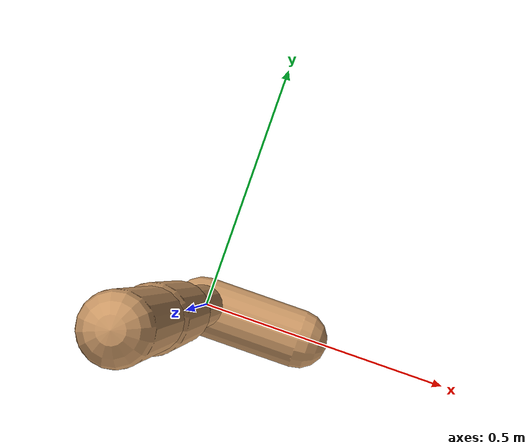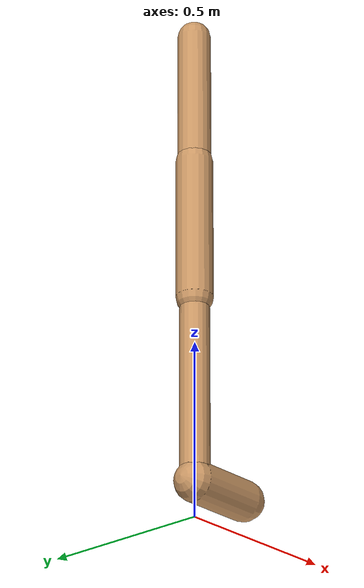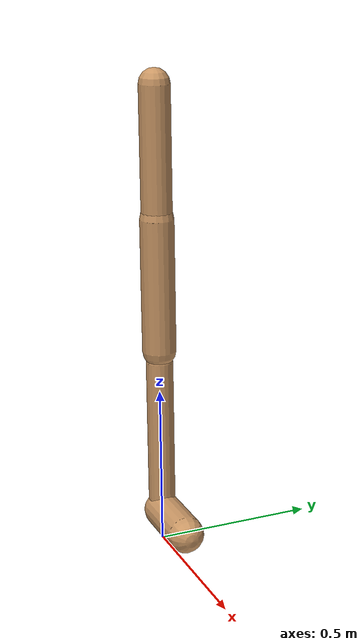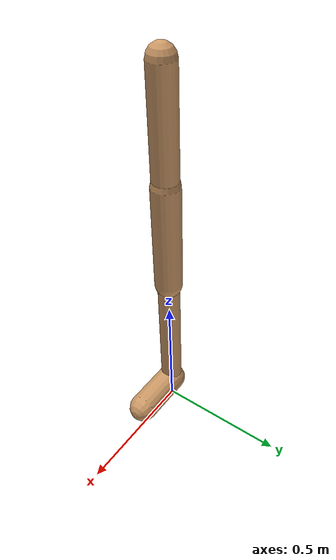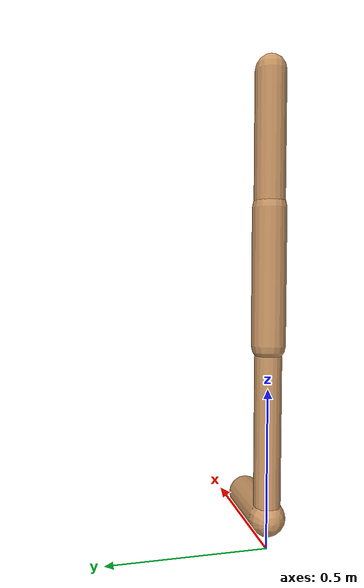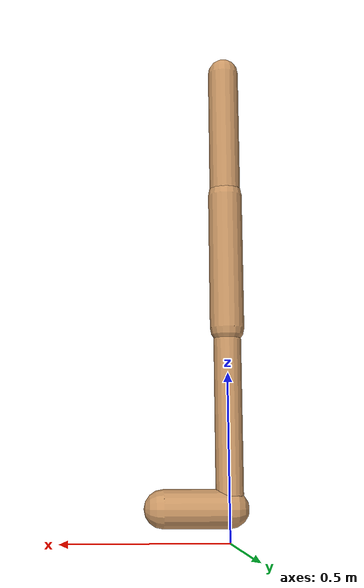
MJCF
<mujoco model="walker2d">
  <compiler angle="degree" coordinate="global" inertiafromgeom="true" />
  <default>
    <joint armature="0.01" damping=".1" limited="true" />
    <geom conaffinity="0" condim="3" contype="1" density="1000" friction="0.8 .1 .1" rgba="0.8 0.6 .4 1" />
  </default>
  <option integrator="RK4" timestep="0.002" />
  <worldbody>

    <body name="torso" pos="0 0 -0.07519449777327615">
      <joint armature="0" axis="1 0 0" damping="0" limited="false" name="ignorex" pos="0 0 0" stiffness="0" type="slide" />
      <joint armature="0" axis="0 0 1" damping="0" limited="false" name="ignorez" pos="0 0 0" ref="1.25" stiffness="0" type="slide" />
      <joint armature="0" axis="0 1 0" damping="0" limited="false" name="ignorey" pos="0 0 0" stiffness="0" type="hinge" />
      <geom fromto="0 0 1.45 0 0 1.05" name="torso_geom" size="0.047251733870049356" type="capsule" />
      <body name="thigh">
        <joint axis="0 -1 0" name="thigh_joint" pos="0 0 1.05" range="-150 0" type="hinge" />
        <geom fromto="0.0 0.0 1.05 0.0 0.0 0.6356184463136572" name="thigh_geom" size="0.0520874767753709" type="capsule" />
        <body name="leg" pos="0.0 0.0 0.03561844631365718">
          <joint axis="0 -1 0" name="leg_joint" pos="0 0 0.6" range="-150 0" type="hinge" />
          <geom fromto="0.0 0.0 0.6 0.0 0.0 0.13957605145961904" name="leg_geom" size="0.04166998142029672" type="capsule" />
          <body name="foot" pos="0.0 0.0 0.03957605145961904">
            <joint axis="0 -1 0" name="foot_joint" pos="0 0 0.1" range="-45 45" type="hinge" />
            <geom fromto="0.0 0.0 0.10000000000000002 0.196903658247236 0.0 0.10000000000000002" name="foot_geom" size="0.05704490149709455" type="capsule" />
          </body>
        </body>
      </body>

      <body name="thigh_left">
        <joint axis="0 -1 0" name="thigh_left_joint" pos="0 0 1.05" range="-150 0" type="hinge" />
        <geom fromto="0.0 0.0 1.05 0.0 0.0 0.6356184463136572" name="thigh_left_geom" rgba=".7 .3 .6 1" size="0.0520874767753709" type="capsule" />
        <body name="leg_left" pos="0.0 0.0 0.03561844631365718">
          <joint axis="0 -1 0" name="leg_left_joint" pos="0 0 0.6" range="-150 0" type="hinge" />
          <geom fromto="0.0 0.0 0.6 0.0 0.0 0.13957605145961904" name="leg_left_geom" rgba=".7 .3 .6 1" size="0.04166998142029672" type="capsule" />
          <body name="foot_left" pos="0.0 0.0 0.03957605145961904">
            <joint axis="0 -1 0" name="foot_left_joint" pos="0 0 0.1" range="-45 45" type="hinge" />
            <geom fromto="0.0 0.0 0.10000000000000002 0.196903658247236 0.0 0.10000000000000002" name="foot_left_geom" rgba=".7 .3 .6 1" size="0.05704490149709455" type="capsule" />
          </body>
        </body>
      </body>
    </body>
  </worldbody>
  <actuator>

    <motor ctrllimited="true" ctrlrange="-1.0 1.0" gear="100" joint="thigh_joint" />
    <motor ctrllimited="true" ctrlrange="-1.0 1.0" gear="100" joint="leg_joint" />
    <motor ctrllimited="true" ctrlrange="-1.0 1.0" gear="100" joint="foot_joint" />
    <motor ctrllimited="true" ctrlrange="-1.0 1.0" gear="100" joint="thigh_left_joint" />
    <motor ctrllimited="true" ctrlrange="-1.0 1.0" gear="100" joint="leg_left_joint" />
    <motor ctrllimited="true" ctrlrange="-1.0 1.0" gear="100" joint="foot_left_joint" />

  </actuator>
</mujoco>
